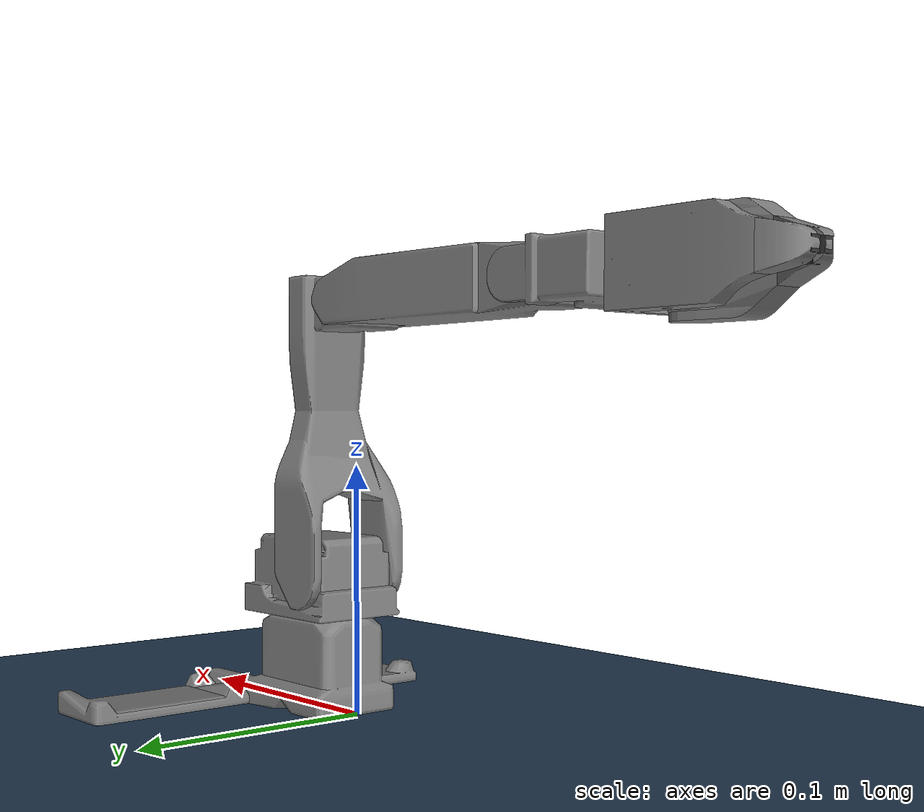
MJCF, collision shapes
<mujoco model="low_cost_robot scene">
  <include file="low_cost_robot_arm.xml"/>

  <visual>
    <headlight diffuse="0.6 0.6 0.6" ambient="0.3 0.3 0.3" specular="0 0 0"/>
    <rgba haze="0.15 0.25 0.35 1"/>
    <global azimuth="210" elevation="-20"/>
  </visual>

  <asset>
    <texture type="skybox" builtin="gradient" rgb1="0.3 0.5 0.7" rgb2="0 0 0" width="512" height="3072"/>
    <texture type="2d" name="groundplane" builtin="checker" mark="edge" rgb1="0.2 0.3 0.4" rgb2="0.1 0.2 0.3"
      markrgb="0.8 0.8 0.8" width="300" height="300"/>
    <material name="groundplane" texture="groundplane" texuniform="true" texrepeat="5 5" reflectance="0.2"/>
  </asset>

  <worldbody>
    <light pos="0 0 3" dir="0 0 -1" directional="false"/>
    <geom name="floor" size="0 0 0.05" type="plane" material="groundplane" pos="0 0 0" friction="0.1"/>
  </worldbody>
</mujoco>

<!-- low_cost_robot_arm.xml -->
<mujoco model="low_cost_robot_arm">
  <compiler angle="radian" meshdir="assets"/>

  <option integrator="implicitfast" cone="elliptic" impratio="10"/>

  <default>
    <default class="low_cost_robot_arm">
      <joint armature="0.5" frictionloss="0.2"/>
      <position kp="100" kv="10" forcerange="-87 87" inheritrange="1"/>
      <default class="visual">
        <geom type="mesh" group="2" contype="0" conaffinity="0"/>
      </default>
      <default class="collision">
        <geom type="mesh" group="3" mass="0" density="0"/>
        <default class="pad_box1">
          <geom type="box" friction="0.7" solimp="0.95 0.99 0.001" solref="0.004 1" mass="0" priority="1"
            size="0.002 0.002 0.0025" rgba="0.2 0.2 0.2 1"/>
        </default>
        <default class="pad_box2">
          <geom type="box" friction="0.6" solimp="0.95 0.99 0.001" solref="0.004 1" mass="0" priority="1"
            size="0.002 0.002 0.0052" rgba="0.1 0.1 0.1 1"/>
        </default>
      </default>
    </default>
  </default>

  <asset>
    <material name="black" rgba="0.1 0.1 0.1 1"/>
    <material name="white" rgba="0.8 0.8 0.8 1"/>

    <mesh name="base_link" file="base_link.stl"/>
    <mesh name="shoulder_rotation" file="shoulder_rotation.stl"/>
    <mesh name="shoulder_to_elbow" file="shoulder_to_elbow.stl"/>
    <mesh name="elbow_to_wrist_extension" file="elbow_to_wrist_extension.stl"/>
    <mesh name="elbow_to_wrist" file="elbow_to_wrist.stl"/>
    <mesh name="gripper_static_finger" file="gripper_static_finger.stl"/>
    <mesh name="gripper_moving_finger" file="gripper_moving_finger.stl"/>
    <mesh name="base_link_motor" file="base_link_motor.stl"/>
    <mesh name="shoulder_rotation_motor" file="shoulder_rotation_motor.stl"/>
    <mesh name="shoulder_to_elbow_motor" file="shoulder_to_elbow_motor.stl"/>
    <mesh name="elbow_to_wrist_extension_motor" file="elbow_to_wrist_extension_motor.stl"/>
    <mesh name="elbow_to_wrist_motor" file="elbow_to_wrist_motor.stl"/>
    <mesh name="gripper_static_finger_motor" file="gripper_static_finger_motor.stl"/>
    <mesh name="base_link_collision" file="base_link_collision.stl"/>
    <mesh name="shoulder_rotation_collision" file="shoulder_rotation_collision.stl"/>
    <mesh name="shoulder_to_elbow_collision" file="shoulder_to_elbow_collision.stl"/>
    <mesh name="elbow_to_wrist_extension_collision" file="elbow_to_wrist_extension_collision.stl"/>
    <mesh name="elbow_to_wrist_collision" file="elbow_to_wrist_collision.stl"/>
    <mesh name="gripper_static_finger_collision_1" file="gripper_static_finger_collision_1.stl"/>
    <mesh name="gripper_static_finger_collision_2" file="gripper_static_finger_collision_2.stl"/>
    <mesh name="gripper_moving_finger_collision_1" file="gripper_moving_finger_collision_1.stl"/>
    <mesh name="gripper_moving_finger_collision_2" file="gripper_moving_finger_collision_2.stl"/>
  </asset>

  <worldbody>
    <body name="base_link" childclass="low_cost_robot_arm">
      <geom mesh="base_link" class="visual" material="white"/>
      <geom mesh="base_link_motor" class="visual" material="black"/>
      <geom mesh="base_link_collision" class="collision"/>
      <body name="shoulder_rotation" pos="0.012 0 0.0409">
        <inertial pos="0.011924 -0.00048792 0.013381" quat="-0.0190903 0.705417 0.0178052 0.708312" mass="0.05014"
          diaginertia="1.44921e-05 1.2371e-05 7.59138e-06"/>
        <joint name="base_rotation" pos="0 0 0" axis="0 0 -1" range="-2.2 2.2"/>
        <geom mesh="shoulder_rotation" class="visual" material="white"/>
        <geom mesh="shoulder_rotation_motor" class="visual" material="black"/>
        <geom mesh="shoulder_rotation_collision" class="collision"/>
        <body name="shoulder_to_elbow" pos="0 -0.0209 0.0154">
          <inertial pos="0.0011747 0.02097 0.071547" quat="0.998768 2.01447e-05 0.0496266 0.000367169" mass="0.050177"
            diaginertia="3.73065e-05 3.3772e-05 7.94901e-06"/>
          <joint name="pitch" pos="0 0 0" axis="0 1 0" range="-1.57 0.6"/>
          <geom mesh="shoulder_to_elbow" class="visual" material="white"/>
          <geom mesh="shoulder_to_elbow_motor" class="visual" material="black"/>
          <geom mesh="shoulder_to_elbow_collision" class="collision"/>
          <body name="elbow_to_wrist_extension" pos="-0.0148 0.0065 0.1083">
            <inertial pos="-0.05537 0.014505 0.0028659" quat="8.17663e-05 0.710999 -4.16983e-05 0.703193" mass="0.06379"
              diaginertia="2.45081e-05 2.2231e-05 7.34061e-06"/>
            <joint name="elbow" pos="0 0 0" axis="0 -1 0" range="-1.57 1.45"/>
            <geom mesh="elbow_to_wrist_extension" class="visual" material="white"/>
            <geom mesh="elbow_to_wrist_extension_motor" class="visual" material="black"/>
            <geom mesh="elbow_to_wrist_extension_collision" class="collision"/>
            <body name="elbow_to_wrist" pos="-0.10048 5e-05 0.0026999">
              <inertial pos="-0.02652 0.019195 -9.0614e-06" quat="0.707361 0.706812 0.00580344 0.00484124"
                mass="0.019805" diaginertia="2.95813e-06 2.8759e-06 1.07787e-06"/>
              <joint name="wrist_pitch" pos="0 0 0" axis="0 1 0" range="-2.0 2.0"/>
              <geom mesh="elbow_to_wrist" class="visual" material="white"/>
              <geom mesh="elbow_to_wrist_motor" class="visual" material="black"/>
              <geom mesh="elbow_to_wrist_collision" class="collision"/>
              <body name="gripper_static_finger" pos="-0.045 0.013097 0">
                <inertial pos="-0.019091 0.0053379 0.00018011" quat="0.105295 0.703509 -0.0986543 0.695885"
                  mass="0.029277" diaginertia="8.11303e-06 7.14908e-06 3.27429e-06"/>
                <joint name="wrist_roll" pos="0 0 0" axis="1 0 0" range="-3.14 3.14"/>
                <geom mesh="gripper_static_finger" class="visual" material="white"/>
                <geom mesh="gripper_static_finger_motor" class="visual" material="black"/>
                <geom mesh="gripper_static_finger_collision_1" class="collision"/>
                <geom mesh="gripper_static_finger_collision_2" class="collision"/>
                <geom class="pad_box1" name="gripper_static_finger_pad_1" pos="-0.0668 0.0105 0.00045"/>
                <geom class="pad_box2" name="gripper_static_finger_pad_3" pos="-0.0628 0.0105 0.0005"/>
                <body name="gripper_moving_finger" pos="-0.01315 -0.0075 0.0145">
                  <inertial pos="-0.02507 0.0010817 -0.01414" quat="0.528148 0.5474 0.466496 0.451436" mass="0.012831"
                    diaginertia="3.49922e-06 2.45768e-06 1.4645e-06"/>
                  <joint name="gripper" pos="0 0 0" axis="0 0 -1" range="-1.60 0.032" frictionloss="0.1"/>
                  <geom mesh="gripper_moving_finger" class="visual" material="white"/>
                  <geom mesh="gripper_moving_finger_collision_1" class="collision"/>
                  <geom mesh="gripper_moving_finger_collision_2" class="collision"/>
                  <geom class="pad_box1" name="gripper_moving_finger_pad_1" pos="-0.0535 0.0113 -0.01395"/>
                  <geom class="pad_box2" name="gripper_moving_finger_pad_3" pos="-0.0495 0.0113 -0.01395"/>
                </body>
              </body>
            </body>
          </body>
        </body>
      </body>
    </body>
  </worldbody>

  <contact>
    <exclude name="exclude_base_link_shoulder_rotation" body1="base_link" body2="shoulder_rotation"/>
  </contact>

  <actuator>
    <position class="low_cost_robot_arm" name="base_rotation" joint="base_rotation" forcerange="-87 87"/>
    <position class="low_cost_robot_arm" name="pitch" joint="pitch" forcerange="-87 87"/>
    <position class="low_cost_robot_arm" name="elbow" joint="elbow" forcerange="-87 87"/>
    <position class="low_cost_robot_arm" name="wrist_pitch" joint="wrist_pitch" forcerange="-12 12"/>
    <position class="low_cost_robot_arm" name="wrist_roll" joint="wrist_roll" forcerange="-10 10"/>
    <position class="low_cost_robot_arm" name="gripper" joint="gripper" forcerange="-5 5"/>
  </actuator>

  <keyframe>
    <key name="home" qpos="0 0 0 0 0 0" ctrl="0 0 0 0 0 0"/>
  </keyframe>
</mujoco>
